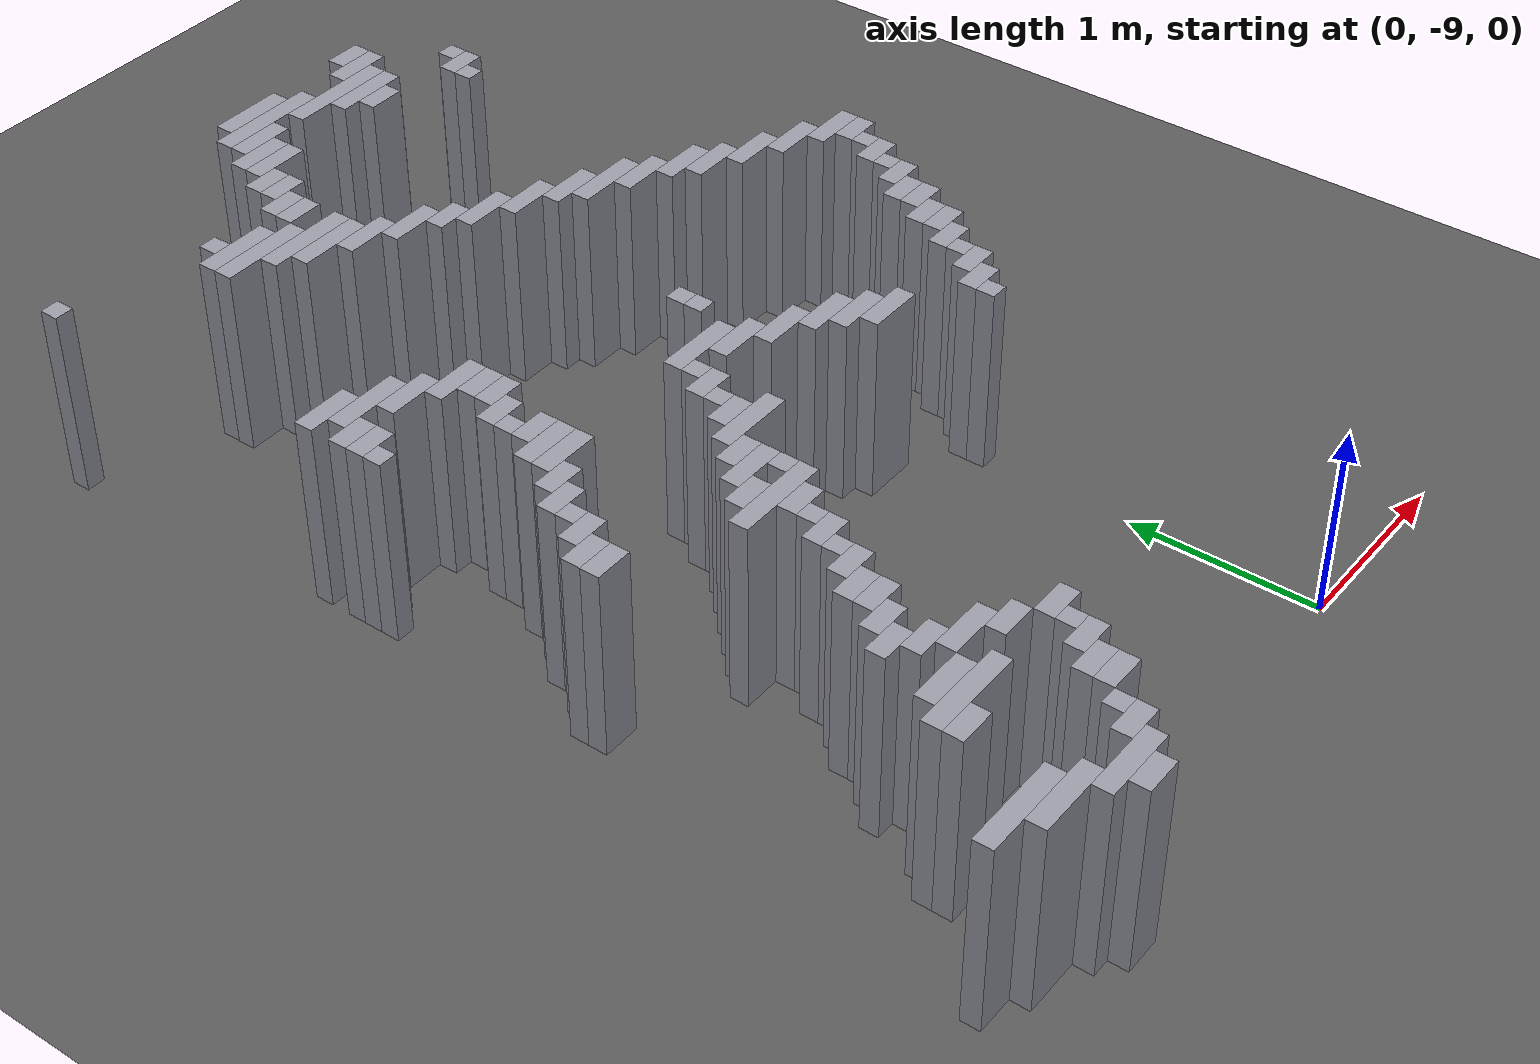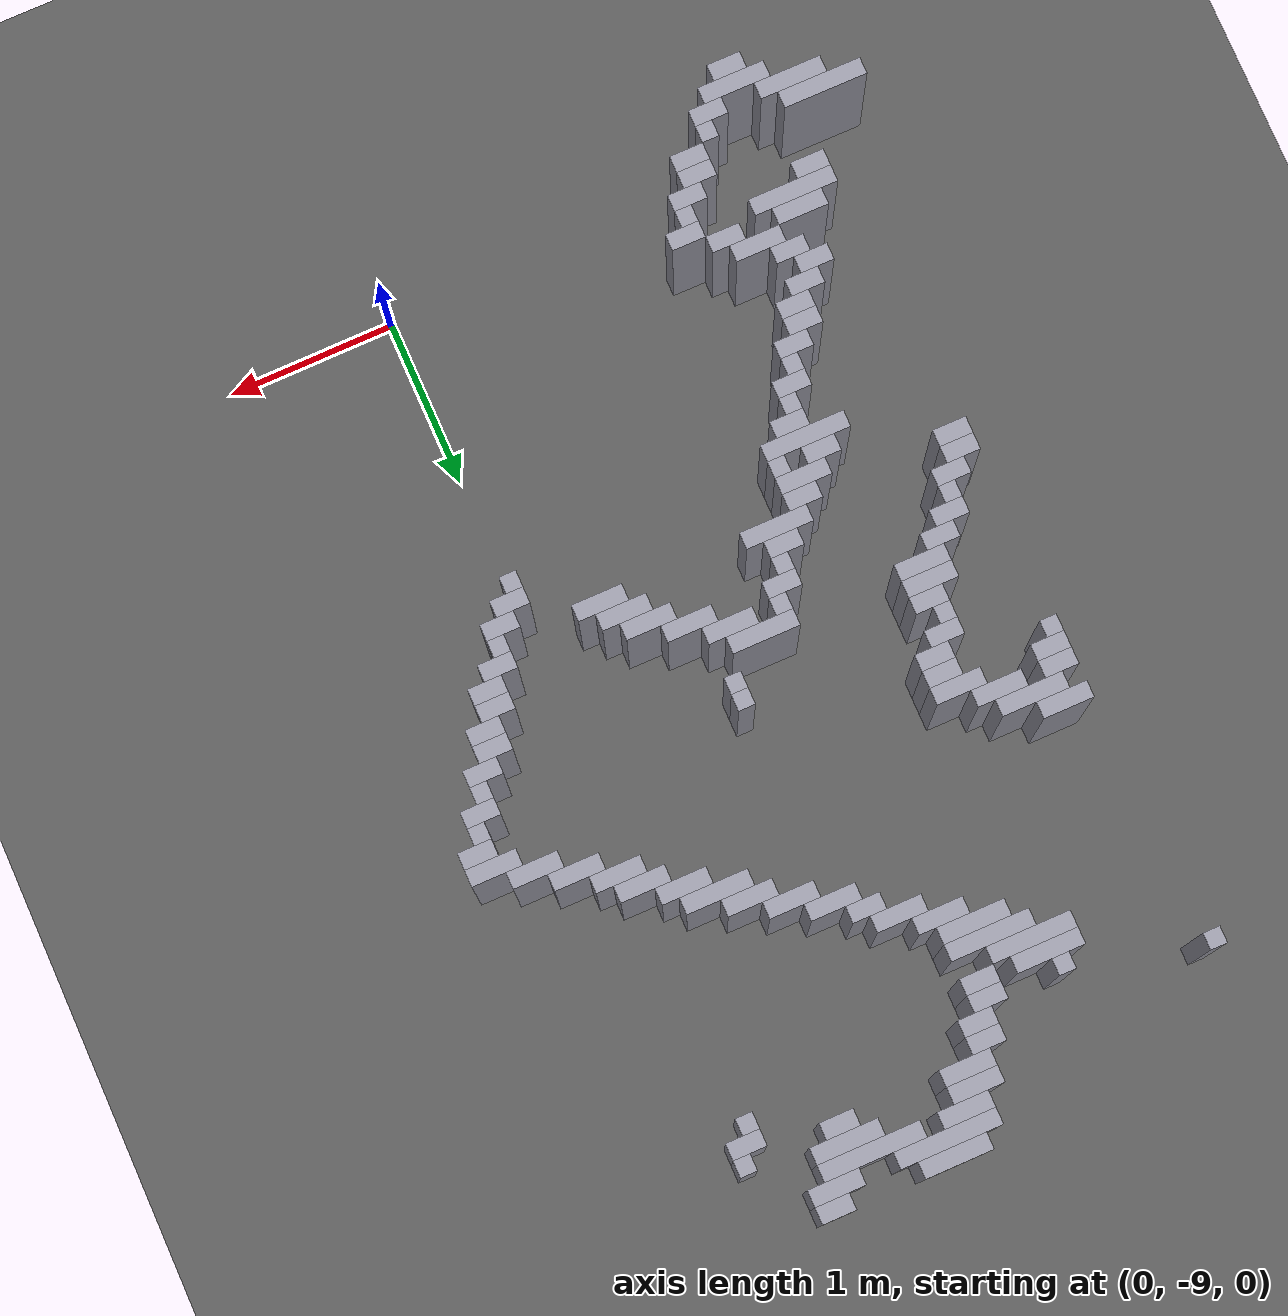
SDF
<sdf version="1.8">
 <world name="dimi">
  <model name="ground">
   <static>true</static>
   <link name="ground_link">
    <collision name="c"><geometry><plane><normal>0 0 1</normal><size>60 60</size></plane></geometry></collision>
    <visual name="v">
     <geometry><plane><normal>0 0 1</normal><size>60 60</size></plane></geometry>
     <material><ambient>0.3 0.3 0.3 1</ambient><diffuse>0.35 0.35 0.35 1</diffuse></material>
    </visual>
   </link>
  </model>
  <model name="walls">
   <static>true</static>
   <link name="wall_349">
    <pose>-0.9610 -3.3710 0.5000 0 0 0</pose>
    <collision name="c"><geometry><box><size>0.4000 0.1000 1.0000</size></box></geometry></collision>
    <visual name="v">
     <geometry><box><size>0.4000 0.1000 1.0000</size></box></geometry>
     <material><ambient>0.5 0.5 0.55 1</ambient><diffuse>0.6 0.6 0.65 1</diffuse></material>
    </visual>
   </link>
   <link name="wall_350">
    <pose>-0.2610 -3.3710 0.5000 0 0 0</pose>
    <collision name="c"><geometry><box><size>0.2000 0.1000 1.0000</size></box></geometry></collision>
    <visual name="v">
     <geometry><box><size>0.2000 0.1000 1.0000</size></box></geometry>
     <material><ambient>0.5 0.5 0.55 1</ambient><diffuse>0.6 0.6 0.65 1</diffuse></material>
    </visual>
   </link>
   <link name="wall_355">
    <pose>-0.9610 -3.4710 0.5000 0 0 0</pose>
    <collision name="c"><geometry><box><size>0.6000 0.1000 1.0000</size></box></geometry></collision>
    <visual name="v">
     <geometry><box><size>0.6000 0.1000 1.0000</size></box></geometry>
     <material><ambient>0.5 0.5 0.55 1</ambient><diffuse>0.6 0.6 0.65 1</diffuse></material>
    </visual>
   </link>
   <link name="wall_356">
    <pose>-0.3110 -3.4710 0.5000 0 0 0</pose>
    <collision name="c"><geometry><box><size>0.3000 0.1000 1.0000</size></box></geometry></collision>
    <visual name="v">
     <geometry><box><size>0.3000 0.1000 1.0000</size></box></geometry>
     <material><ambient>0.5 0.5 0.55 1</ambient><diffuse>0.6 0.6 0.65 1</diffuse></material>
    </visual>
   </link>
   <link name="wall_362">
    <pose>-1.1110 -3.5710 0.5000 0 0 0</pose>
    <collision name="c"><geometry><box><size>0.3000 0.1000 1.0000</size></box></geometry></collision>
    <visual name="v">
     <geometry><box><size>0.3000 0.1000 1.0000</size></box></geometry>
     <material><ambient>0.5 0.5 0.55 1</ambient><diffuse>0.6 0.6 0.65 1</diffuse></material>
    </visual>
   </link>
   <link name="wall_363">
    <pose>-0.5610 -3.5710 0.5000 0 0 0</pose>
    <collision name="c"><geometry><box><size>0.6000 0.1000 1.0000</size></box></geometry></collision>
    <visual name="v">
     <geometry><box><size>0.6000 0.1000 1.0000</size></box></geometry>
     <material><ambient>0.5 0.5 0.55 1</ambient><diffuse>0.6 0.6 0.65 1</diffuse></material>
    </visual>
   </link>
   <link name="wall_369">
    <pose>-1.2110 -3.6710 0.5000 0 0 0</pose>
    <collision name="c"><geometry><box><size>0.3000 0.1000 1.0000</size></box></geometry></collision>
    <visual name="v">
     <geometry><box><size>0.3000 0.1000 1.0000</size></box></geometry>
     <material><ambient>0.5 0.5 0.55 1</ambient><diffuse>0.6 0.6 0.65 1</diffuse></material>
    </visual>
   </link>
   <link name="wall_370">
    <pose>-0.4610 -3.6710 0.5000 0 0 0</pose>
    <collision name="c"><geometry><box><size>0.4000 0.1000 1.0000</size></box></geometry></collision>
    <visual name="v">
     <geometry><box><size>0.4000 0.1000 1.0000</size></box></geometry>
     <material><ambient>0.5 0.5 0.55 1</ambient><diffuse>0.6 0.6 0.65 1</diffuse></material>
    </visual>
   </link>
   <link name="wall_376">
    <pose>-1.2110 -3.7710 0.5000 0 0 0</pose>
    <collision name="c"><geometry><box><size>0.3000 0.1000 1.0000</size></box></geometry></collision>
    <visual name="v">
     <geometry><box><size>0.3000 0.1000 1.0000</size></box></geometry>
     <material><ambient>0.5 0.5 0.55 1</ambient><diffuse>0.6 0.6 0.65 1</diffuse></material>
    </visual>
   </link>
   <link name="wall_377">
    <pose>-0.4610 -3.7710 0.5000 0 0 0</pose>
    <collision name="c"><geometry><box><size>0.2000 0.1000 1.0000</size></box></geometry></collision>
    <visual name="v">
     <geometry><box><size>0.2000 0.1000 1.0000</size></box></geometry>
     <material><ambient>0.5 0.5 0.55 1</ambient><diffuse>0.6 0.6 0.65 1</diffuse></material>
    </visual>
   </link>
   <link name="wall_378">
    <pose>0.0890 -3.7710 0.5000 0 0 0</pose>
    <collision name="c"><geometry><box><size>0.1000 0.1000 1.0000</size></box></geometry></collision>
    <visual name="v">
     <geometry><box><size>0.1000 0.1000 1.0000</size></box></geometry>
     <material><ambient>0.5 0.5 0.55 1</ambient><diffuse>0.6 0.6 0.65 1</diffuse></material>
    </visual>
   </link>
   <link name="wall_384">
    <pose>-2.7110 -3.8710 0.5000 0 0 0</pose>
    <collision name="c"><geometry><box><size>0.1000 0.1000 1.0000</size></box></geometry></collision>
    <visual name="v">
     <geometry><box><size>0.1000 0.1000 1.0000</size></box></geometry>
     <material><ambient>0.5 0.5 0.55 1</ambient><diffuse>0.6 0.6 0.65 1</diffuse></material>
    </visual>
   </link>
   <link name="wall_385">
    <pose>-1.3610 -3.8710 0.5000 0 0 0</pose>
    <collision name="c"><geometry><box><size>0.2000 0.1000 1.0000</size></box></geometry></collision>
    <visual name="v">
     <geometry><box><size>0.2000 0.1000 1.0000</size></box></geometry>
     <material><ambient>0.5 0.5 0.55 1</ambient><diffuse>0.6 0.6 0.65 1</diffuse></material>
    </visual>
   </link>
   <link name="wall_386">
    <pose>0.0390 -3.8710 0.5000 0 0 0</pose>
    <collision name="c"><geometry><box><size>0.2000 0.1000 1.0000</size></box></geometry></collision>
    <visual name="v">
     <geometry><box><size>0.2000 0.1000 1.0000</size></box></geometry>
     <material><ambient>0.5 0.5 0.55 1</ambient><diffuse>0.6 0.6 0.65 1</diffuse></material>
    </visual>
   </link>
   <link name="wall_392">
    <pose>-1.3610 -3.9710 0.5000 0 0 0</pose>
    <collision name="c"><geometry><box><size>0.2000 0.1000 1.0000</size></box></geometry></collision>
    <visual name="v">
     <geometry><box><size>0.2000 0.1000 1.0000</size></box></geometry>
     <material><ambient>0.5 0.5 0.55 1</ambient><diffuse>0.6 0.6 0.65 1</diffuse></material>
    </visual>
   </link>
   <link name="wall_393">
    <pose>-0.0110 -3.9710 0.5000 0 0 0</pose>
    <collision name="c"><geometry><box><size>0.1000 0.1000 1.0000</size></box></geometry></collision>
    <visual name="v">
     <geometry><box><size>0.1000 0.1000 1.0000</size></box></geometry>
     <material><ambient>0.5 0.5 0.55 1</ambient><diffuse>0.6 0.6 0.65 1</diffuse></material>
    </visual>
   </link>
   <link name="wall_399">
    <pose>-1.9110 -4.0710 0.5000 0 0 0</pose>
    <collision name="c"><geometry><box><size>0.1000 0.1000 1.0000</size></box></geometry></collision>
    <visual name="v">
     <geometry><box><size>0.1000 0.1000 1.0000</size></box></geometry>
     <material><ambient>0.5 0.5 0.55 1</ambient><diffuse>0.6 0.6 0.65 1</diffuse></material>
    </visual>
   </link>
   <link name="wall_400">
    <pose>-1.4610 -4.0710 0.5000 0 0 0</pose>
    <collision name="c"><geometry><box><size>0.2000 0.1000 1.0000</size></box></geometry></collision>
    <visual name="v">
     <geometry><box><size>0.2000 0.1000 1.0000</size></box></geometry>
     <material><ambient>0.5 0.5 0.55 1</ambient><diffuse>0.6 0.6 0.65 1</diffuse></material>
    </visual>
   </link>
   <link name="wall_405">
    <pose>-1.8610 -4.1710 0.5000 0 0 0</pose>
    <collision name="c"><geometry><box><size>0.4000 0.1000 1.0000</size></box></geometry></collision>
    <visual name="v">
     <geometry><box><size>0.4000 0.1000 1.0000</size></box></geometry>
     <material><ambient>0.5 0.5 0.55 1</ambient><diffuse>0.6 0.6 0.65 1</diffuse></material>
    </visual>
   </link>
   <link name="wall_406">
    <pose>-1.4610 -4.1710 0.5000 0 0 0</pose>
    <collision name="c"><geometry><box><size>0.2000 0.1000 1.0000</size></box></geometry></collision>
    <visual name="v">
     <geometry><box><size>0.2000 0.1000 1.0000</size></box></geometry>
     <material><ambient>0.5 0.5 0.55 1</ambient><diffuse>0.6 0.6 0.65 1</diffuse></material>
    </visual>
   </link>
   <link name="wall_413">
    <pose>-1.8110 -4.2710 0.5000 0 0 0</pose>
    <collision name="c"><geometry><box><size>0.5000 0.1000 1.0000</size></box></geometry></collision>
    <visual name="v">
     <geometry><box><size>0.5000 0.1000 1.0000</size></box></geometry>
     <material><ambient>0.5 0.5 0.55 1</ambient><diffuse>0.6 0.6 0.65 1</diffuse></material>
    </visual>
   </link>
   <link name="wall_421">
    <pose>-1.6110 -4.3710 0.5000 0 0 0</pose>
    <collision name="c"><geometry><box><size>0.5000 0.1000 1.0000</size></box></geometry></collision>
    <visual name="v">
     <geometry><box><size>0.5000 0.1000 1.0000</size></box></geometry>
     <material><ambient>0.5 0.5 0.55 1</ambient><diffuse>0.6 0.6 0.65 1</diffuse></material>
    </visual>
   </link>
   <link name="wall_427">
    <pose>-1.5610 -4.4710 0.5000 0 0 0</pose>
    <collision name="c"><geometry><box><size>0.4000 0.1000 1.0000</size></box></geometry></collision>
    <visual name="v">
     <geometry><box><size>0.4000 0.1000 1.0000</size></box></geometry>
     <material><ambient>0.5 0.5 0.55 1</ambient><diffuse>0.6 0.6 0.65 1</diffuse></material>
    </visual>
   </link>
   <link name="wall_435">
    <pose>-1.4110 -4.5710 0.5000 0 0 0</pose>
    <collision name="c"><geometry><box><size>0.3000 0.1000 1.0000</size></box></geometry></collision>
    <visual name="v">
     <geometry><box><size>0.3000 0.1000 1.0000</size></box></geometry>
     <material><ambient>0.5 0.5 0.55 1</ambient><diffuse>0.6 0.6 0.65 1</diffuse></material>
    </visual>
   </link>
   <link name="wall_442">
    <pose>-1.2110 -4.6710 0.5000 0 0 0</pose>
    <collision name="c"><geometry><box><size>0.3000 0.1000 1.0000</size></box></geometry></collision>
    <visual name="v">
     <geometry><box><size>0.3000 0.1000 1.0000</size></box></geometry>
     <material><ambient>0.5 0.5 0.55 1</ambient><diffuse>0.6 0.6 0.65 1</diffuse></material>
    </visual>
   </link>
   <link name="wall_447">
    <pose>-1.0610 -4.7710 0.5000 0 0 0</pose>
    <collision name="c"><geometry><box><size>0.2000 0.1000 1.0000</size></box></geometry></collision>
    <visual name="v">
     <geometry><box><size>0.2000 0.1000 1.0000</size></box></geometry>
     <material><ambient>0.5 0.5 0.55 1</ambient><diffuse>0.6 0.6 0.65 1</diffuse></material>
    </visual>
   </link>
   <link name="wall_452">
    <pose>-0.9110 -4.8710 0.5000 0 0 0</pose>
    <collision name="c"><geometry><box><size>0.3000 0.1000 1.0000</size></box></geometry></collision>
    <visual name="v">
     <geometry><box><size>0.3000 0.1000 1.0000</size></box></geometry>
     <material><ambient>0.5 0.5 0.55 1</ambient><diffuse>0.6 0.6 0.65 1</diffuse></material>
    </visual>
   </link>
   <link name="wall_458">
    <pose>-0.7110 -4.9710 0.5000 0 0 0</pose>
    <collision name="c"><geometry><box><size>0.3000 0.1000 1.0000</size></box></geometry></collision>
    <visual name="v">
     <geometry><box><size>0.3000 0.1000 1.0000</size></box></geometry>
     <material><ambient>0.5 0.5 0.55 1</ambient><diffuse>0.6 0.6 0.65 1</diffuse></material>
    </visual>
   </link>
   <link name="wall_463">
    <pose>-0.5110 -5.0710 0.5000 0 0 0</pose>
    <collision name="c"><geometry><box><size>0.3000 0.1000 1.0000</size></box></geometry></collision>
    <visual name="v">
     <geometry><box><size>0.3000 0.1000 1.0000</size></box></geometry>
     <material><ambient>0.5 0.5 0.55 1</ambient><diffuse>0.6 0.6 0.65 1</diffuse></material>
    </visual>
   </link>
   <link name="wall_470">
    <pose>-0.3610 -5.1710 0.5000 0 0 0</pose>
    <collision name="c"><geometry><box><size>0.4000 0.1000 1.0000</size></box></geometry></collision>
    <visual name="v">
     <geometry><box><size>0.4000 0.1000 1.0000</size></box></geometry>
     <material><ambient>0.5 0.5 0.55 1</ambient><diffuse>0.6 0.6 0.65 1</diffuse></material>
    </visual>
   </link>
   <link name="wall_476">
    <pose>-0.2110 -5.2710 0.5000 0 0 0</pose>
    <collision name="c"><geometry><box><size>0.3000 0.1000 1.0000</size></box></geometry></collision>
    <visual name="v">
     <geometry><box><size>0.3000 0.1000 1.0000</size></box></geometry>
     <material><ambient>0.5 0.5 0.55 1</ambient><diffuse>0.6 0.6 0.65 1</diffuse></material>
    </visual>
   </link>
   <link name="wall_484">
    <pose>-2.5110 -5.3710 0.5000 0 0 0</pose>
    <collision name="c"><geometry><box><size>0.3000 0.1000 1.0000</size></box></geometry></collision>
    <visual name="v">
     <geometry><box><size>0.3000 0.1000 1.0000</size></box></geometry>
     <material><ambient>0.5 0.5 0.55 1</ambient><diffuse>0.6 0.6 0.65 1</diffuse></material>
    </visual>
   </link>
   <link name="wall_485">
    <pose>-0.0110 -5.3710 0.5000 0 0 0</pose>
    <collision name="c"><geometry><box><size>0.3000 0.1000 1.0000</size></box></geometry></collision>
    <visual name="v">
     <geometry><box><size>0.3000 0.1000 1.0000</size></box></geometry>
     <material><ambient>0.5 0.5 0.55 1</ambient><diffuse>0.6 0.6 0.65 1</diffuse></material>
    </visual>
   </link>
   <link name="wall_493">
    <pose>-2.3610 -5.4710 0.5000 0 0 0</pose>
    <collision name="c"><geometry><box><size>0.4000 0.1000 1.0000</size></box></geometry></collision>
    <visual name="v">
     <geometry><box><size>0.4000 0.1000 1.0000</size></box></geometry>
     <material><ambient>0.5 0.5 0.55 1</ambient><diffuse>0.6 0.6 0.65 1</diffuse></material>
    </visual>
   </link>
   <link name="wall_494">
    <pose>0.0890 -5.4710 0.5000 0 0 0</pose>
    <collision name="c"><geometry><box><size>0.3000 0.1000 1.0000</size></box></geometry></collision>
    <visual name="v">
     <geometry><box><size>0.3000 0.1000 1.0000</size></box></geometry>
     <material><ambient>0.5 0.5 0.55 1</ambient><diffuse>0.6 0.6 0.65 1</diffuse></material>
    </visual>
   </link>
   <link name="wall_501">
    <pose>-2.5610 -5.5710 0.5000 0 0 0</pose>
    <collision name="c"><geometry><box><size>0.2000 0.1000 1.0000</size></box></geometry></collision>
    <visual name="v">
     <geometry><box><size>0.2000 0.1000 1.0000</size></box></geometry>
     <material><ambient>0.5 0.5 0.55 1</ambient><diffuse>0.6 0.6 0.65 1</diffuse></material>
    </visual>
   </link>
   <link name="wall_502">
    <pose>-2.2110 -5.5710 0.5000 0 0 0</pose>
    <collision name="c"><geometry><box><size>0.3000 0.1000 1.0000</size></box></geometry></collision>
    <visual name="v">
     <geometry><box><size>0.3000 0.1000 1.0000</size></box></geometry>
     <material><ambient>0.5 0.5 0.55 1</ambient><diffuse>0.6 0.6 0.65 1</diffuse></material>
    </visual>
   </link>
   <link name="wall_503">
    <pose>0.2890 -5.5710 0.5000 0 0 0</pose>
    <collision name="c"><geometry><box><size>0.3000 0.1000 1.0000</size></box></geometry></collision>
    <visual name="v">
     <geometry><box><size>0.3000 0.1000 1.0000</size></box></geometry>
     <material><ambient>0.5 0.5 0.55 1</ambient><diffuse>0.6 0.6 0.65 1</diffuse></material>
    </visual>
   </link>
   <link name="wall_510">
    <pose>-2.5610 -5.6710 0.5000 0 0 0</pose>
    <collision name="c"><geometry><box><size>0.2000 0.1000 1.0000</size></box></geometry></collision>
    <visual name="v">
     <geometry><box><size>0.2000 0.1000 1.0000</size></box></geometry>
     <material><ambient>0.5 0.5 0.55 1</ambient><diffuse>0.6 0.6 0.65 1</diffuse></material>
    </visual>
   </link>
   <link name="wall_511">
    <pose>-2.0110 -5.6710 0.5000 0 0 0</pose>
    <collision name="c"><geometry><box><size>0.3000 0.1000 1.0000</size></box></geometry></collision>
    <visual name="v">
     <geometry><box><size>0.3000 0.1000 1.0000</size></box></geometry>
     <material><ambient>0.5 0.5 0.55 1</ambient><diffuse>0.6 0.6 0.65 1</diffuse></material>
    </visual>
   </link>
   <link name="wall_512">
    <pose>0.4890 -5.6710 0.5000 0 0 0</pose>
    <collision name="c"><geometry><box><size>0.3000 0.1000 1.0000</size></box></geometry></collision>
    <visual name="v">
     <geometry><box><size>0.3000 0.1000 1.0000</size></box></geometry>
     <material><ambient>0.5 0.5 0.55 1</ambient><diffuse>0.6 0.6 0.65 1</diffuse></material>
    </visual>
   </link>
   <link name="wall_518">
    <pose>-2.6110 -5.7710 0.5000 0 0 0</pose>
    <collision name="c"><geometry><box><size>0.1000 0.1000 1.0000</size></box></geometry></collision>
    <visual name="v">
     <geometry><box><size>0.1000 0.1000 1.0000</size></box></geometry>
     <material><ambient>0.5 0.5 0.55 1</ambient><diffuse>0.6 0.6 0.65 1</diffuse></material>
    </visual>
   </link>
   <link name="wall_519">
    <pose>-1.9610 -5.7710 0.5000 0 0 0</pose>
    <collision name="c"><geometry><box><size>0.2000 0.1000 1.0000</size></box></geometry></collision>
    <visual name="v">
     <geometry><box><size>0.2000 0.1000 1.0000</size></box></geometry>
     <material><ambient>0.5 0.5 0.55 1</ambient><diffuse>0.6 0.6 0.65 1</diffuse></material>
    </visual>
   </link>
   <link name="wall_520">
    <pose>0.6890 -5.7710 0.5000 0 0 0</pose>
    <collision name="c"><geometry><box><size>0.3000 0.1000 1.0000</size></box></geometry></collision>
    <visual name="v">
     <geometry><box><size>0.3000 0.1000 1.0000</size></box></geometry>
     <material><ambient>0.5 0.5 0.55 1</ambient><diffuse>0.6 0.6 0.65 1</diffuse></material>
    </visual>
   </link>
   <link name="wall_526">
    <pose>-1.9610 -5.8710 0.5000 0 0 0</pose>
    <collision name="c"><geometry><box><size>0.2000 0.1000 1.0000</size></box></geometry></collision>
    <visual name="v">
     <geometry><box><size>0.2000 0.1000 1.0000</size></box></geometry>
     <material><ambient>0.5 0.5 0.55 1</ambient><diffuse>0.6 0.6 0.65 1</diffuse></material>
    </visual>
   </link>
   <link name="wall_527">
    <pose>0.7390 -5.8710 0.5000 0 0 0</pose>
    <collision name="c"><geometry><box><size>0.2000 0.1000 1.0000</size></box></geometry></collision>
    <visual name="v">
     <geometry><box><size>0.2000 0.1000 1.0000</size></box></geometry>
     <material><ambient>0.5 0.5 0.55 1</ambient><diffuse>0.6 0.6 0.65 1</diffuse></material>
    </visual>
   </link>
   <link name="wall_534">
    <pose>-2.0610 -5.9710 0.5000 0 0 0</pose>
    <collision name="c"><geometry><box><size>0.2000 0.1000 1.0000</size></box></geometry></collision>
    <visual name="v">
     <geometry><box><size>0.2000 0.1000 1.0000</size></box></geometry>
     <material><ambient>0.5 0.5 0.55 1</ambient><diffuse>0.6 0.6 0.65 1</diffuse></material>
    </visual>
   </link>
   <link name="wall_535">
    <pose>0.6890 -5.9710 0.5000 0 0 0</pose>
    <collision name="c"><geometry><box><size>0.1000 0.1000 1.0000</size></box></geometry></collision>
    <visual name="v">
     <geometry><box><size>0.1000 0.1000 1.0000</size></box></geometry>
     <material><ambient>0.5 0.5 0.55 1</ambient><diffuse>0.6 0.6 0.65 1</diffuse></material>
    </visual>
   </link>
   <link name="wall_540">
    <pose>-2.1110 -6.0710 0.5000 0 0 0</pose>
    <collision name="c"><geometry><box><size>0.1000 0.1000 1.0000</size></box></geometry></collision>
    <visual name="v">
     <geometry><box><size>0.1000 0.1000 1.0000</size></box></geometry>
     <material><ambient>0.5 0.5 0.55 1</ambient><diffuse>0.6 0.6 0.65 1</diffuse></material>
    </visual>
   </link>
   <link name="wall_541">
    <pose>-0.9110 -6.0710 0.5000 0 0 0</pose>
    <collision name="c"><geometry><box><size>0.1000 0.1000 1.0000</size></box></geometry></collision>
    <visual name="v">
     <geometry><box><size>0.1000 0.1000 1.0000</size></box></geometry>
     <material><ambient>0.5 0.5 0.55 1</ambient><diffuse>0.6 0.6 0.65 1</diffuse></material>
    </visual>
   </link>
   <link name="wall_542">
    <pose>0.6390 -6.0710 0.5000 0 0 0</pose>
    <collision name="c"><geometry><box><size>0.2000 0.1000 1.0000</size></box></geometry></collision>
    <visual name="v">
     <geometry><box><size>0.2000 0.1000 1.0000</size></box></geometry>
     <material><ambient>0.5 0.5 0.55 1</ambient><diffuse>0.6 0.6 0.65 1</diffuse></material>
    </visual>
   </link>
   <link name="wall_549">
    <pose>-2.0610 -6.1710 0.5000 0 0 0</pose>
    <collision name="c"><geometry><box><size>0.2000 0.1000 1.0000</size></box></geometry></collision>
    <visual name="v">
     <geometry><box><size>0.2000 0.1000 1.0000</size></box></geometry>
     <material><ambient>0.5 0.5 0.55 1</ambient><diffuse>0.6 0.6 0.65 1</diffuse></material>
    </visual>
   </link>
   <link name="wall_550">
    <pose>-0.9110 -6.1710 0.5000 0 0 0</pose>
    <collision name="c"><geometry><box><size>0.1000 0.1000 1.0000</size></box></geometry></collision>
    <visual name="v">
     <geometry><box><size>0.1000 0.1000 1.0000</size></box></geometry>
     <material><ambient>0.5 0.5 0.55 1</ambient><diffuse>0.6 0.6 0.65 1</diffuse></material>
    </visual>
   </link>
   <link name="wall_551">
    <pose>0.5890 -6.1710 0.5000 0 0 0</pose>
    <collision name="c"><geometry><box><size>0.1000 0.1000 1.0000</size></box></geometry></collision>
    <visual name="v">
     <geometry><box><size>0.1000 0.1000 1.0000</size></box></geometry>
     <material><ambient>0.5 0.5 0.55 1</ambient><diffuse>0.6 0.6 0.65 1</diffuse></material>
    </visual>
   </link>
   <link name="wall_557">
    <pose>-2.1110 -6.2710 0.5000 0 0 0</pose>
    <collision name="c"><geometry><box><size>0.3000 0.1000 1.0000</size></box></geometry></collision>
    <visual name="v">
     <geometry><box><size>0.3000 0.1000 1.0000</size></box></geometry>
     <material><ambient>0.5 0.5 0.55 1</ambient><diffuse>0.6 0.6 0.65 1</diffuse></material>
    </visual>
   </link>
   <link name="wall_558">
    <pose>0.5390 -6.2710 0.5000 0 0 0</pose>
    <collision name="c"><geometry><box><size>0.2000 0.1000 1.0000</size></box></geometry></collision>
    <visual name="v">
     <geometry><box><size>0.2000 0.1000 1.0000</size></box></geometry>
     <material><ambient>0.5 0.5 0.55 1</ambient><diffuse>0.6 0.6 0.65 1</diffuse></material>
    </visual>
   </link>
   <link name="wall_564">
    <pose>-2.1110 -6.3710 0.5000 0 0 0</pose>
    <collision name="c"><geometry><box><size>0.3000 0.1000 1.0000</size></box></geometry></collision>
    <visual name="v">
     <geometry><box><size>0.3000 0.1000 1.0000</size></box></geometry>
     <material><ambient>0.5 0.5 0.55 1</ambient><diffuse>0.6 0.6 0.65 1</diffuse></material>
    </visual>
   </link>
   <link name="wall_565">
    <pose>-1.1610 -6.3710 0.5000 0 0 0</pose>
    <collision name="c"><geometry><box><size>0.4000 0.1000 1.0000</size></box></geometry></collision>
    <visual name="v">
     <geometry><box><size>0.4000 0.1000 1.0000</size></box></geometry>
     <material><ambient>0.5 0.5 0.55 1</ambient><diffuse>0.6 0.6 0.65 1</diffuse></material>
    </visual>
   </link>
   <link name="wall_566">
    <pose>0.4390 -6.3710 0.5000 0 0 0</pose>
    <collision name="c"><geometry><box><size>0.2000 0.1000 1.0000</size></box></geometry></collision>
    <visual name="v">
     <geometry><box><size>0.2000 0.1000 1.0000</size></box></geometry>
     <material><ambient>0.5 0.5 0.55 1</ambient><diffuse>0.6 0.6 0.65 1</diffuse></material>
    </visual>
   </link>
   <link name="wall_570">
    <pose>-2.2610 -6.4710 0.5000 0 0 0</pose>
    <collision name="c"><geometry><box><size>0.2000 0.1000 1.0000</size></box></geometry></collision>
    <visual name="v">
     <geometry><box><size>0.2000 0.1000 1.0000</size></box></geometry>
     <material><ambient>0.5 0.5 0.55 1</ambient><diffuse>0.6 0.6 0.65 1</diffuse></material>
    </visual>
   </link>
   <link name="wall_571">
    <pose>-1.3110 -6.4710 0.5000 0 0 0</pose>
    <collision name="c"><geometry><box><size>0.1000 0.1000 1.0000</size></box></geometry></collision>
    <visual name="v">
     <geometry><box><size>0.1000 0.1000 1.0000</size></box></geometry>
     <material><ambient>0.5 0.5 0.55 1</ambient><diffuse>0.6 0.6 0.65 1</diffuse></material>
    </visual>
   </link>
   <link name="wall_572">
    <pose>-1.0110 -6.4710 0.5000 0 0 0</pose>
    <collision name="c"><geometry><box><size>0.3000 0.1000 1.0000</size></box></geometry></collision>
    <visual name="v">
     <geometry><box><size>0.3000 0.1000 1.0000</size></box></geometry>
     <material><ambient>0.5 0.5 0.55 1</ambient><diffuse>0.6 0.6 0.65 1</diffuse></material>
    </visual>
   </link>
   <link name="wall_573">
    <pose>0.4390 -6.4710 0.5000 0 0 0</pose>
    <collision name="c"><geometry><box><size>0.2000 0.1000 1.0000</size></box></geometry></collision>
    <visual name="v">
     <geometry><box><size>0.2000 0.1000 1.0000</size></box></geometry>
     <material><ambient>0.5 0.5 0.55 1</ambient><diffuse>0.6 0.6 0.65 1</diffuse></material>
    </visual>
   </link>
   <link name="wall_577">
    <pose>-2.3610 -6.5710 0.5000 0 0 0</pose>
    <collision name="c"><geometry><box><size>0.2000 0.1000 1.0000</size></box></geometry></collision>
    <visual name="v">
     <geometry><box><size>0.2000 0.1000 1.0000</size></box></geometry>
     <material><ambient>0.5 0.5 0.55 1</ambient><diffuse>0.6 0.6 0.65 1</diffuse></material>
    </visual>
   </link>
   <link name="wall_578">
    <pose>-1.3610 -6.5710 0.5000 0 0 0</pose>
    <collision name="c"><geometry><box><size>0.2000 0.1000 1.0000</size></box></geometry></collision>
    <visual name="v">
     <geometry><box><size>0.2000 0.1000 1.0000</size></box></geometry>
     <material><ambient>0.5 0.5 0.55 1</ambient><diffuse>0.6 0.6 0.65 1</diffuse></material>
    </visual>
   </link>
   <link name="wall_579">
    <pose>-0.8110 -6.5710 0.5000 0 0 0</pose>
    <collision name="c"><geometry><box><size>0.3000 0.1000 1.0000</size></box></geometry></collision>
    <visual name="v">
     <geometry><box><size>0.3000 0.1000 1.0000</size></box></geometry>
     <material><ambient>0.5 0.5 0.55 1</ambient><diffuse>0.6 0.6 0.65 1</diffuse></material>
    </visual>
   </link>
   <link name="wall_580">
    <pose>0.3390 -6.5710 0.5000 0 0 0</pose>
    <collision name="c"><geometry><box><size>0.2000 0.1000 1.0000</size></box></geometry></collision>
    <visual name="v">
     <geometry><box><size>0.2000 0.1000 1.0000</size></box></geometry>
     <material><ambient>0.5 0.5 0.55 1</ambient><diffuse>0.6 0.6 0.65 1</diffuse></material>
    </visual>
   </link>
   <link name="wall_584">
    <pose>-2.4110 -6.6710 0.5000 0 0 0</pose>
    <collision name="c"><geometry><box><size>0.1000 0.1000 1.0000</size></box></geometry></collision>
    <visual name="v">
     <geometry><box><size>0.1000 0.1000 1.0000</size></box></geometry>
     <material><ambient>0.5 0.5 0.55 1</ambient><diffuse>0.6 0.6 0.65 1</diffuse></material>
    </visual>
   </link>
   <link name="wall_585">
    <pose>-1.4110 -6.6710 0.5000 0 0 0</pose>
    <collision name="c"><geometry><box><size>0.1000 0.1000 1.0000</size></box></geometry></collision>
    <visual name="v">
     <geometry><box><size>0.1000 0.1000 1.0000</size></box></geometry>
     <material><ambient>0.5 0.5 0.55 1</ambient><diffuse>0.6 0.6 0.65 1</diffuse></material>
    </visual>
   </link>
   <link name="wall_586">
    <pose>-0.6110 -6.6710 0.5000 0 0 0</pose>
    <collision name="c"><geometry><box><size>0.3000 0.1000 1.0000</size></box></geometry></collision>
    <visual name="v">
     <geometry><box><size>0.3000 0.1000 1.0000</size></box></geometry>
     <material><ambient>0.5 0.5 0.55 1</ambient><diffuse>0.6 0.6 0.65 1</diffuse></material>
    </visual>
   </link>
   <link name="wall_587">
    <pose>0.3390 -6.6710 0.5000 0 0 0</pose>
    <collision name="c"><geometry><box><size>0.2000 0.1000 1.0000</size></box></geometry></collision>
    <visual name="v">
     <geometry><box><size>0.2000 0.1000 1.0000</size></box></geometry>
     <material><ambient>0.5 0.5 0.55 1</ambient><diffuse>0.6 0.6 0.65 1</diffuse></material>
    </visual>
   </link>
   <link name="wall_591">
    <pose>-2.4610 -6.7710 0.5000 0 0 0</pose>
    <collision name="c"><geometry><box><size>0.2000 0.1000 1.0000</size></box></geometry></collision>
    <visual name="v">
     <geometry><box><size>0.2000 0.1000 1.0000</size></box></geometry>
     <material><ambient>0.5 0.5 0.55 1</ambient><diffuse>0.6 0.6 0.65 1</diffuse></material>
    </visual>
   </link>
   <link name="wall_592">
    <pose>-1.4610 -6.7710 0.5000 0 0 0</pose>
    <collision name="c"><geometry><box><size>0.2000 0.1000 1.0000</size></box></geometry></collision>
    <visual name="v">
     <geometry><box><size>0.2000 0.1000 1.0000</size></box></geometry>
     <material><ambient>0.5 0.5 0.55 1</ambient><diffuse>0.6 0.6 0.65 1</diffuse></material>
    </visual>
   </link>
   <link name="wall_593">
    <pose>-0.5110 -6.7710 0.5000 0 0 0</pose>
    <collision name="c"><geometry><box><size>0.3000 0.1000 1.0000</size></box></geometry></collision>
    <visual name="v">
     <geometry><box><size>0.3000 0.1000 1.0000</size></box></geometry>
     <material><ambient>0.5 0.5 0.55 1</ambient><diffuse>0.6 0.6 0.65 1</diffuse></material>
    </visual>
   </link>
   <link name="wall_594">
    <pose>0.2390 -6.7710 0.5000 0 0 0</pose>
    <collision name="c"><geometry><box><size>0.2000 0.1000 1.0000</size></box></geometry></collision>
    <visual name="v">
     <geometry><box><size>0.2000 0.1000 1.0000</size></box></geometry>
     <material><ambient>0.5 0.5 0.55 1</ambient><diffuse>0.6 0.6 0.65 1</diffuse></material>
    </visual>
   </link>
   <link name="wall_598">
    <pose>-2.5610 -6.8710 0.5000 0 0 0</pose>
    <collision name="c"><geometry><box><size>0.2000 0.1000 1.0000</size></box></geometry></collision>
    <visual name="v">
     <geometry><box><size>0.2000 0.1000 1.0000</size></box></geometry>
     <material><ambient>0.5 0.5 0.55 1</ambient><diffuse>0.6 0.6 0.65 1</diffuse></material>
    </visual>
   </link>
   <link name="wall_599">
    <pose>-1.4610 -6.8710 0.5000 0 0 0</pose>
    <collision name="c"><geometry><box><size>0.4000 0.1000 1.0000</size></box></geometry></collision>
    <visual name="v">
     <geometry><box><size>0.4000 0.1000 1.0000</size></box></geometry>
     <material><ambient>0.5 0.5 0.55 1</ambient><diffuse>0.6 0.6 0.65 1</diffuse></material>
    </visual>
   </link>
   <link name="wall_600">
    <pose>-0.4110 -6.8710 0.5000 0 0 0</pose>
    <collision name="c"><geometry><box><size>0.3000 0.1000 1.0000</size></box></geometry></collision>
    <visual name="v">
     <geometry><box><size>0.3000 0.1000 1.0000</size></box></geometry>
     <material><ambient>0.5 0.5 0.55 1</ambient><diffuse>0.6 0.6 0.65 1</diffuse></material>
    </visual>
   </link>
   <link name="wall_601">
    <pose>0.1890 -6.8710 0.5000 0 0 0</pose>
    <collision name="c"><geometry><box><size>0.1000 0.1000 1.0000</size></box></geometry></collision>
    <visual name="v">
     <geometry><box><size>0.1000 0.1000 1.0000</size></box></geometry>
     <material><ambient>0.5 0.5 0.55 1</ambient><diffuse>0.6 0.6 0.65 1</diffuse></material>
    </visual>
   </link>
   <link name="wall_606">
    <pose>-2.5610 -6.9710 0.5000 0 0 0</pose>
    <collision name="c"><geometry><box><size>0.2000 0.1000 1.0000</size></box></geometry></collision>
    <visual name="v">
     <geometry><box><size>0.2000 0.1000 1.0000</size></box></geometry>
     <material><ambient>0.5 0.5 0.55 1</ambient><diffuse>0.6 0.6 0.65 1</diffuse></material>
    </visual>
   </link>
   <link name="wall_607">
    <pose>-1.6610 -6.9710 0.5000 0 0 0</pose>
    <collision name="c"><geometry><box><size>0.2000 0.1000 1.0000</size></box></geometry></collision>
    <visual name="v">
     <geometry><box><size>0.2000 0.1000 1.0000</size></box></geometry>
     <material><ambient>0.5 0.5 0.55 1</ambient><diffuse>0.6 0.6 0.65 1</diffuse></material>
    </visual>
   </link>
   <link name="wall_608">
    <pose>0.1390 -6.9710 0.5000 0 0 0</pose>
    <collision name="c"><geometry><box><size>0.2000 0.1000 1.0000</size></box></geometry></collision>
    <visual name="v">
     <geometry><box><size>0.2000 0.1000 1.0000</size></box></geometry>
     <material><ambient>0.5 0.5 0.55 1</ambient><diffuse>0.6 0.6 0.65 1</diffuse></material>
    </visual>
   </link>
   <link name="wall_612">
    <pose>-1.7110 -7.0710 0.5000 0 0 0</pose>
    <collision name="c"><geometry><box><size>0.3000 0.1000 1.0000</size></box></geometry></collision>
    <visual name="v">
     <geometry><box><size>0.3000 0.1000 1.0000</size></box></geometry>
     <material><ambient>0.5 0.5 0.55 1</ambient><diffuse>0.6 0.6 0.65 1</diffuse></material>
    </visual>
   </link>
   <link name="wall_613">
    <pose>0.0390 -7.0710 0.5000 0 0 0</pose>
    <collision name="c"><geometry><box><size>0.2000 0.1000 1.0000</size></box></geometry></collision>
    <visual name="v">
     <geometry><box><size>0.2000 0.1000 1.0000</size></box></geometry>
     <material><ambient>0.5 0.5 0.55 1</ambient><diffuse>0.6 0.6 0.65 1</diffuse></material>
    </visual>
   </link>
   <link name="wall_617">
    <pose>-1.8610 -7.1710 0.5000 0 0 0</pose>
    <collision name="c"><geometry><box><size>0.2000 0.1000 1.0000</size></box></geometry></collision>
    <visual name="v">
     <geometry><box><size>0.2000 0.1000 1.0000</size></box></geometry>
     <material><ambient>0.5 0.5 0.55 1</ambient><diffuse>0.6 0.6 0.65 1</diffuse></material>
    </visual>
   </link>
   <link name="wall_618">
    <pose>-1.6110 -7.1710 0.5000 0 0 0</pose>
    <collision name="c"><geometry><box><size>0.1000 0.1000 1.0000</size></box></geometry></collision>
    <visual name="v">
     <geometry><box><size>0.1000 0.1000 1.0000</size></box></geometry>
     <material><ambient>0.5 0.5 0.55 1</ambient><diffuse>0.6 0.6 0.65 1</diffuse></material>
    </visual>
   </link>
   <link name="wall_619">
    <pose>-0.0110 -7.1710 0.5000 0 0 0</pose>
    <collision name="c"><geometry><box><size>0.1000 0.1000 1.0000</size></box></geometry></collision>
    <visual name="v">
     <geometry><box><size>0.1000 0.1000 1.0000</size></box></geometry>
     <material><ambient>0.5 0.5 0.55 1</ambient><diffuse>0.6 0.6 0.65 1</diffuse></material>
    </visual>
   </link>
   <link name="wall_623">
    <pose>-1.8110 -7.2710 0.5000 0 0 0</pose>
    <collision name="c"><geometry><box><size>0.5000 0.1000 1.0000</size></box></geometry></collision>
    <visual name="v">
     <geometry><box><size>0.5000 0.1000 1.0000</size></box></geometry>
     <material><ambient>0.5 0.5 0.55 1</ambient><diffuse>0.6 0.6 0.65 1</diffuse></material>
    </visual>
   </link>
   <link name="wall_627">
    <pose>-1.7610 -7.3710 0.5000 0 0 0</pose>
    <collision name="c"><geometry><box><size>0.2000 0.1000 1.0000</size></box></geometry></collision>
    <visual name="v">
     <geometry><box><size>0.2000 0.1000 1.0000</size></box></geometry>
     <material><ambient>0.5 0.5 0.55 1</ambient><diffuse>0.6 0.6 0.65 1</diffuse></material>
    </visual>
   </link>
   <link name="wall_631">
    <pose>-1.8110 -7.4710 0.5000 0 0 0</pose>
    <collision name="c"><geometry><box><size>0.1000 0.1000 1.0000</size></box></geometry></collision>
    <visual name="v">
     <geometry><box><size>0.1000 0.1000 1.0000</size></box></geometry>
     <material><ambient>0.5 0.5 0.55 1</ambient><diffuse>0.6 0.6 0.65 1</diffuse></material>
    </visual>
   </link>
   <link name="wall_635">
    <pose>-1.8610 -7.5710 0.5000 0 0 0</pose>
    <collision name="c"><geometry><box><size>0.2000 0.1000 1.0000</size></box></geometry></collision>
    <visual name="v">
     <geometry><box><size>0.2000 0.1000 1.0000</size></box></geometry>
     <material><ambient>0.5 0.5 0.55 1</ambient><diffuse>0.6 0.6 0.65 1</diffuse></material>
    </visual>
   </link>
   <link name="wall_639">
    <pose>-1.9110 -7.6710 0.5000 0 0 0</pose>
    <collision name="c"><geometry><box><size>0.1000 0.1000 1.0000</size></box></geometry></collision>
    <visual name="v">
     <geometry><box><size>0.1000 0.1000 1.0000</size></box></geometry>
     <material><ambient>0.5 0.5 0.55 1</ambient><diffuse>0.6 0.6 0.65 1</diffuse></material>
    </visual>
   </link>
   <link name="wall_643">
    <pose>-1.9610 -7.7710 0.5000 0 0 0</pose>
    <collision name="c"><geometry><box><size>0.2000 0.1000 1.0000</size></box></geometry></collision>
    <visual name="v">
     <geometry><box><size>0.2000 0.1000 1.0000</size></box></geometry>
     <material><ambient>0.5 0.5 0.55 1</ambient><diffuse>0.6 0.6 0.65 1</diffuse></material>
    </visual>
   </link>
   <link name="wall_646">
    <pose>-2.0610 -7.8710 0.5000 0 0 0</pose>
    <collision name="c"><geometry><box><size>0.2000 0.1000 1.0000</size></box></geometry></collision>
    <visual name="v">
     <geometry><box><size>0.2000 0.1000 1.0000</size></box></geometry>
     <material><ambient>0.5 0.5 0.55 1</ambient><diffuse>0.6 0.6 0.65 1</diffuse></material>
    </visual>
   </link>
   <link name="wall_649">
    <pose>-2.0610 -7.9710 0.5000 0 0 0</pose>
    <collision name="c"><geometry><box><size>0.2000 0.1000 1.0000</size></box></geometry></collision>
    <visual name="v">
     <geometry><box><size>0.2000 0.1000 1.0000</size></box></geometry>
     <material><ambient>0.5 0.5 0.55 1</ambient><diffuse>0.6 0.6 0.65 1</diffuse></material>
    </visual>
   </link>
   <link name="wall_652">
    <pose>-2.1610 -8.0710 0.5000 0 0 0</pose>
    <collision name="c"><geometry><box><size>0.2000 0.1000 1.0000</size></box></geometry></collision>
    <visual name="v">
     <geometry><box><size>0.2000 0.1000 1.0000</size></box></geometry>
     <material><ambient>0.5 0.5 0.55 1</ambient><diffuse>0.6 0.6 0.65 1</diffuse></material>
    </visual>
   </link>
   <link name="wall_654">
    <pose>-2.2610 -8.1710 0.5000 0 0 0</pose>
    <collision name="c"><geometry><box><size>0.2000 0.1000 1.0000</size></box></geometry></collision>
    <visual name="v">
     <geometry><box><size>0.2000 0.1000 1.0000</size></box></geometry>
     <material><ambient>0.5 0.5 0.55 1</ambient><diffuse>0.6 0.6 0.65 1</diffuse></material>
    </visual>
   </link>
   <link name="wall_656">
    <pose>-2.1610 -8.2710 0.5000 0 0 0</pose>
    <collision name="c"><geometry><box><size>0.2000 0.1000 1.0000</size></box></geometry></collision>
    <visual name="v">
     <geometry><box><size>0.2000 0.1000 1.0000</size></box></geometry>
     <material><ambient>0.5 0.5 0.55 1</ambient><diffuse>0.6 0.6 0.65 1</diffuse></material>
    </visual>
   </link>
   <link name="wall_659">
    <pose>-2.0110 -8.3710 0.5000 0 0 0</pose>
    <collision name="c"><geometry><box><size>0.3000 0.1000 1.0000</size></box></geometry></collision>
    <visual name="v">
     <geometry><box><size>0.3000 0.1000 1.0000</size></box></geometry>
     <material><ambient>0.5 0.5 0.55 1</ambient><diffuse>0.6 0.6 0.65 1</diffuse></material>
    </visual>
   </link>
   <link name="wall_662">
    <pose>-2.3110 -8.4710 0.5000 0 0 0</pose>
    <collision name="c"><geometry><box><size>0.3000 0.1000 1.0000</size></box></geometry></collision>
    <visual name="v">
     <geometry><box><size>0.3000 0.1000 1.0000</size></box></geometry>
     <material><ambient>0.5 0.5 0.55 1</ambient><diffuse>0.6 0.6 0.65 1</diffuse></material>
    </visual>
   </link>
   <link name="wall_663">
    <pose>-1.8610 -8.4710 0.5000 0 0 0</pose>
    <collision name="c"><geometry><box><size>0.2000 0.1000 1.0000</size></box></geometry></collision>
    <visual name="v">
     <geometry><box><size>0.2000 0.1000 1.0000</size></box></geometry>
     <material><ambient>0.5 0.5 0.55 1</ambient><diffuse>0.6 0.6 0.65 1</diffuse></material>
    </visual>
   </link>
   <link name="wall_666">
    <pose>-2.3110 -8.5710 0.5000 0 0 0</pose>
    <collision name="c"><geometry><box><size>0.5000 0.1000 1.0000</size></box></geometry></collision>
    <visual name="v">
     <geometry><box><size>0.5000 0.1000 1.0000</size></box></geometry>
     <material><ambient>0.5 0.5 0.55 1</ambient><diffuse>0.6 0.6 0.65 1</diffuse></material>
    </visual>
   </link>
   <link name="wall_667">
    <pose>-1.6610 -8.5710 0.5000 0 0 0</pose>
    <collision name="c"><geometry><box><size>0.2000 0.1000 1.0000</size></box></geometry></collision>
    <visual name="v">
     <geometry><box><size>0.2000 0.1000 1.0000</size></box></geometry>
     <material><ambient>0.5 0.5 0.55 1</ambient><diffuse>0.6 0.6 0.65 1</diffuse></material>
    </visual>
   </link>
   <link name="wall_670">
    <pose>-2.4610 -8.6710 0.5000 0 0 0</pose>
    <collision name="c"><geometry><box><size>0.2000 0.1000 1.0000</size></box></geometry></collision>
    <visual name="v">
     <geometry><box><size>0.2000 0.1000 1.0000</size></box></geometry>
     <material><ambient>0.5 0.5 0.55 1</ambient><diffuse>0.6 0.6 0.65 1</diffuse></material>
    </visual>
   </link>
   <link name="wall_671">
    <pose>-1.7110 -8.6710 0.5000 0 0 0</pose>
    <collision name="c"><geometry><box><size>0.1000 0.1000 1.0000</size></box></geometry></collision>
    <visual name="v">
     <geometry><box><size>0.1000 0.1000 1.0000</size></box></geometry>
     <material><ambient>0.5 0.5 0.55 1</ambient><diffuse>0.6 0.6 0.65 1</diffuse></material>
    </visual>
   </link>
   <link name="wall_674">
    <pose>-1.7610 -8.7710 0.5000 0 0 0</pose>
    <collision name="c"><geometry><box><size>0.2000 0.1000 1.0000</size></box></geometry></collision>
    <visual name="v">
     <geometry><box><size>0.2000 0.1000 1.0000</size></box></geometry>
     <material><ambient>0.5 0.5 0.55 1</ambient><diffuse>0.6 0.6 0.65 1</diffuse></material>
    </visual>
   </link>
   <link name="wall_676">
    <pose>-1.8610 -8.8710 0.5000 0 0 0</pose>
    <collision name="c"><geometry><box><size>0.2000 0.1000 1.0000</size></box></geometry></collision>
    <visual name="v">
     <geometry><box><size>0.2000 0.1000 1.0000</size></box></geometry>
     <material><ambient>0.5 0.5 0.55 1</ambient><diffuse>0.6 0.6 0.65 1</diffuse></material>
    </visual>
   </link>
   <link name="wall_678">
    <pose>-1.8610 -8.9710 0.5000 0 0 0</pose>
    <collision name="c"><geometry><box><size>0.2000 0.1000 1.0000</size></box></geometry></collision>
    <visual name="v">
     <geometry><box><size>0.2000 0.1000 1.0000</size></box></geometry>
     <material><ambient>0.5 0.5 0.55 1</ambient><diffuse>0.6 0.6 0.65 1</diffuse></material>
    </visual>
   </link>
   <link name="wall_679">
    <pose>-2.7110 -9.0710 0.5000 0 0 0</pose>
    <collision name="c"><geometry><box><size>0.5000 0.1000 1.0000</size></box></geometry></collision>
    <visual name="v">
     <geometry><box><size>0.5000 0.1000 1.0000</size></box></geometry>
     <material><ambient>0.5 0.5 0.55 1</ambient><diffuse>0.6 0.6 0.65 1</diffuse></material>
    </visual>
   </link>
   <link name="wall_680">
    <pose>-2.0110 -9.0710 0.5000 0 0 0</pose>
    <collision name="c"><geometry><box><size>0.1000 0.1000 1.0000</size></box></geometry></collision>
    <visual name="v">
     <geometry><box><size>0.1000 0.1000 1.0000</size></box></geometry>
     <material><ambient>0.5 0.5 0.55 1</ambient><diffuse>0.6 0.6 0.65 1</diffuse></material>
    </visual>
   </link>
   <link name="wall_681">
    <pose>-2.5610 -9.1710 0.5000 0 0 0</pose>
    <collision name="c"><geometry><box><size>0.4000 0.1000 1.0000</size></box></geometry></collision>
    <visual name="v">
     <geometry><box><size>0.4000 0.1000 1.0000</size></box></geometry>
     <material><ambient>0.5 0.5 0.55 1</ambient><diffuse>0.6 0.6 0.65 1</diffuse></material>
    </visual>
   </link>
   <link name="wall_682">
    <pose>-2.0610 -9.1710 0.5000 0 0 0</pose>
    <collision name="c"><geometry><box><size>0.2000 0.1000 1.0000</size></box></geometry></collision>
    <visual name="v">
     <geometry><box><size>0.2000 0.1000 1.0000</size></box></geometry>
     <material><ambient>0.5 0.5 0.55 1</ambient><diffuse>0.6 0.6 0.65 1</diffuse></material>
    </visual>
   </link>
   <link name="wall_683">
    <pose>-2.2610 -9.2710 0.5000 0 0 0</pose>
    <collision name="c"><geometry><box><size>0.4000 0.1000 1.0000</size></box></geometry></collision>
    <visual name="v">
     <geometry><box><size>0.4000 0.1000 1.0000</size></box></geometry>
     <material><ambient>0.5 0.5 0.55 1</ambient><diffuse>0.6 0.6 0.65 1</diffuse></material>
    </visual>
   </link>
   <link name="wall_684">
    <pose>-2.2610 -9.3710 0.5000 0 0 0</pose>
    <collision name="c"><geometry><box><size>0.2000 0.1000 1.0000</size></box></geometry></collision>
    <visual name="v">
     <geometry><box><size>0.2000 0.1000 1.0000</size></box></geometry>
     <material><ambient>0.5 0.5 0.55 1</ambient><diffuse>0.6 0.6 0.65 1</diffuse></material>
    </visual>
   </link>
  </model>
 </world>
</sdf>
